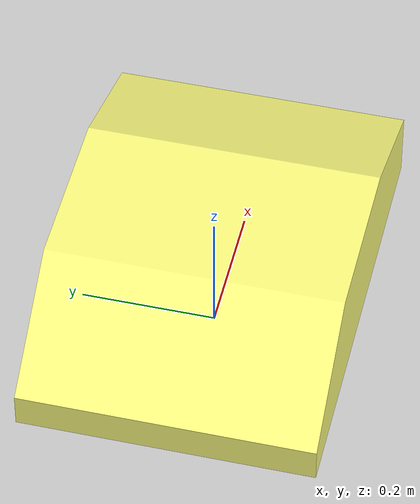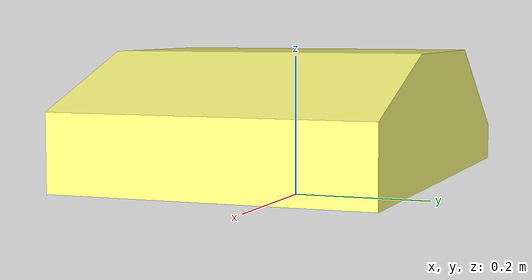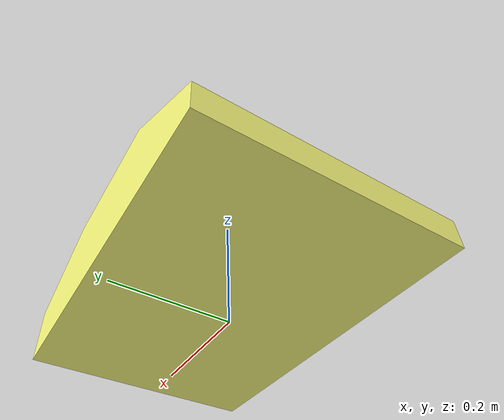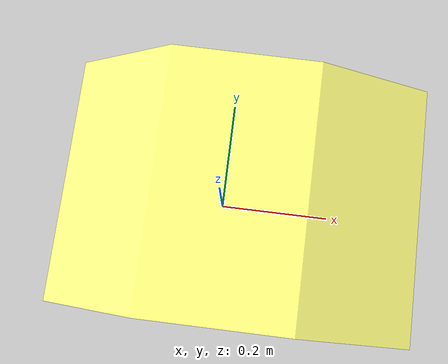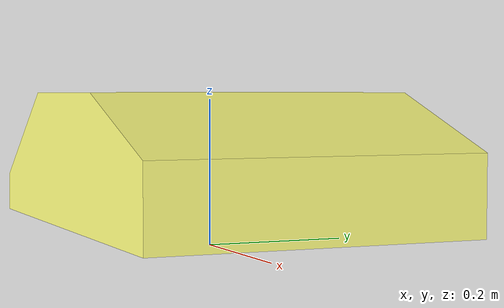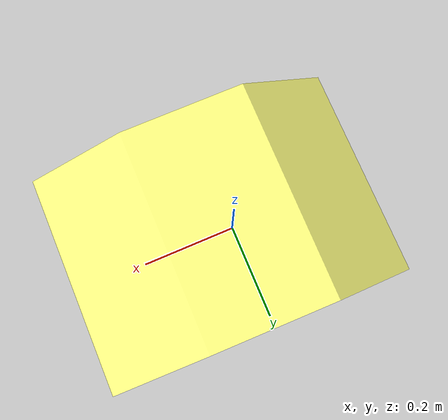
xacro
<?xml version="1.0"?>
<robot xmlns:xacro="http://www.ros.org/wiki/xacro" name="robot">

  <!-- Include other Xacro files -->
  <xacro:include filename="$(find max_light_pkg)/urdf/max_light.xacro"/>
  <xacro:include filename="$(find max_light_pkg)/urdf/front_wheel.xacro"/>
  <xacro:include filename="$(find max_light_pkg)/urdf/rear_wheel.xacro"/>

  <xacro:include filename="$(find max_light_pkg)/urdf/mid_front_wheel.xacro"/>
  <xacro:include filename="$(find max_light_pkg)/urdf/mid_rear_wheel.xacro"/>

  <!-- Define properties -->
  <xacro:property name="position_left" value="0.31141"/>
  <xacro:property name="position_right" value="-0.3"/>

  <!-- Use macros and properties -->

  <xacro:front_wheel left_right="left" radius="0.075" length="0.123" position="${position_left}"/>
  <xacro:front_wheel left_right="right" radius="0.075" length="0.123" position="${position_right}"/>
  <xacro:rear_wheel left_right="left" radius="0.09" length="0.123" position="${position_left}"/>
  <xacro:rear_wheel left_right="right" radius="0.09" length="0.123" position="${position_right}"/>

  <xacro:mid_front_wheel left_right="left" radius="0.055" length="0.123" position="${position_left}"/>
  <xacro:mid_front_wheel left_right="right" radius="0.055" length="0.123" position="${position_right}"/>
  <xacro:mid_rear_wheel left_right="left" radius="0.055" length="0.123" position="${position_left}"/>
  <xacro:mid_rear_wheel left_right="right" radius="0.055" length="0.123" position="${position_right}"/>

  <!-- Gazebo plugin -->
  <gazebo>
    <plugin name="gazebo_ros_control" filename="libgazebo_ros_control.so">
      <robotNamespace>/</robotNamespace>
    </plugin>
  </gazebo>

  <gazebo>
    <plugin name="imu_controller" filename="libhector_gazebo_ros_imu.so">
      <updateRate>50.0</updateRate>
      <bodyName>base_link</bodyName>
      <topicName>imu/data</topicName>
      <accelDrift>0.005 0.005 0.005</accelDrift>
      <accelGaussianNoise>0.005 0.005 0.005</accelGaussianNoise>
      <rateDrift>0.005 0.005 0.005 </rateDrift>
      <rateGaussianNoise>0.005 0.005 0.005 </rateGaussianNoise>
      <headingDrift>0.005</headingDrift>
      <headingGaussianNoise>0.005</headingGaussianNoise>
    </plugin>
  </gazebo>

  <gazebo>
    <plugin name="gps_controller" filename="libhector_gazebo_ros_gps.so">
      <updateRate>5</updateRate>
      <bodyName>base_link</bodyName>
      <frameId>base_link</frameId>
      <topicName>navsat/fix</topicName>
      <velocityTopicName>navsat/vel</velocityTopicName>
      <referenceLatitude>$(optenv GAZEBO_WORLD_LAT 49.9)</referenceLatitude>
      <referenceLongitude>$(optenv GAZEBO_WORLD_LON 8.9)</referenceLongitude>
      <referenceHeading>90</referenceHeading>
      <referenceAltitude>0</referenceAltitude>
      <drift>0.01 0.01 0.01</drift>
      <gaussiannoise>5.0 5.0 5.0</gaussiannoise>
      <velocitydrift>0.1 0.1 0.1</velocitydrift>
      <velocitygaussiannoise>0.1 0.1 0.1</velocitygaussiannoise>
    </plugin>
  </gazebo>

</robot>

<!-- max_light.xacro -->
<robot xmlns:xacro="http://www.ros.org/wiki/xacro" name="max_light_pkg">

  <!-- Define constants for reuse -->
  <xacro:property name="base_link_mesh" value="package://max_light_pkg/meshes/base_link.STL"/>
  <xacro:property name="collision_chassis_mesh" value="package://max_light_pkg/meshes/collision_chassis.STL"/>

  <link name="base_link">
    <inertial>
      <origin xyz="8.35425640166998E-07 3.28216849605566E-06 2.19990104377214E-06" rpy="0 0 0" />
      <mass value="14.6921624554222" />
      <inertia ixx="0.134518024186084" ixy="4.16517669374262E-07" ixz="-0.0243729105907269"
               iyy="0.367422616584132" iyz="2.64074275227996E-07" izz="0.319923962428278" />
    </inertial>
    <visual>
      <origin xyz="0 0 0" rpy="0 0 0" />
      <geometry>
        <mesh filename="${base_link_mesh}" />
      </geometry>
      <material name="">
        <color rgba="1 1 0.501960784313725 1" />
      </material>
    </visual>
    <collision>
      <origin xyz="0 0 0" rpy="0 0 0" />
      <geometry>
        <mesh filename="${collision_chassis_mesh}" />
      </geometry>
    </collision>
  </link>

</robot>

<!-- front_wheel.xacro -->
<robot xmlns:xacro="http://www.ros.org/wiki/xacro" name="front_wheel">

<xacro:include filename="$(find max_light_pkg)/urdf/cylinder_inertia.xacro"/>

<xacro:macro name="front_wheel" params="left_right radius length position">

    <xacro:property name="mass" value="4" />

    <link name="front_${left_right}_wheel">
        <collision>
            <geometry>
                <cylinder radius="${radius}" length="${length}" />
            </geometry>
        </collision>
        <xacro:cylinder_inertia mass="${mass}" radius="${radius}" length="${length}"/>
    </link>

    <joint name="front_${left_right}_wheel_joint" type="continuous">
        <origin xyz="0.19917 ${position} -0.0757" rpy=" -1.57 0 0" />
        <parent link="base_link" />
        <child link="front_${left_right}_wheel" />
        <axis  xyz="0 0 1" />
    </joint>

    <transmission name="trans_front_${left_right}_wheel">
        <type>transmission_interface/SimpleTransmission</type>
        <joint name="front_${left_right}_wheel_joint">
        <hardwareInterface>hardware_interface/VelocityJointInterface</hardwareInterface>
        </joint>
        <actuator name="motor_front_${left_right}_wheel">
        <mechanicalReduction>100</mechanicalReduction>
        </actuator>
    </transmission>

    <gazebo reference="front_${left_right}_wheel">
        <gravity>true</gravity>
        <mu1>1</mu1>
        <mu2>1</mu2>
        <kd>1</kd>
        <kp>10000000000.0</kp>
        <fdir1>0 0 1</fdir1>
        <selfCollide>false</selfCollide>
    </gazebo>

</xacro:macro>

</robot>

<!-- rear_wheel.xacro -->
<robot xmlns:xacro="http://www.ros.org/wiki/xacro" name="rear_wheel">

<xacro:include filename="$(find max_light_pkg)/urdf/cylinder_inertia.xacro"/>

<xacro:macro name="rear_wheel" params="left_right radius length position">

    <xacro:property name="mass" value="4.23900913" />

    <link name="rear_${left_right}_wheel">
        <collision>
            <geometry>
                <cylinder radius="${radius}" length="${length}" />
            </geometry>
        </collision>
        <xacro:cylinder_inertia mass="${mass}" radius="${radius}" length="${length}"/>
    </link>

    <joint name="rear_${left_right}_wheel_joint" type="continuous">
        <origin xyz="-0.25305 ${position} -0.06070" rpy=" -1.57 0 0" />
        <parent link="base_link" />
        <child link="rear_${left_right}_wheel" />
        <axis  xyz="0 0 1" />
    </joint>

    <transmission name="trans_rear_${left_right}_wheel">
        <type>transmission_interface/SimpleTransmission</type>
        <joint name="rear_${left_right}_wheel_joint">
        <hardwareInterface>hardware_interface/VelocityJointInterface</hardwareInterface>
        </joint>
        <actuator name="motor_rear_${left_right}_wheel">
        <mechanicalReduction>100</mechanicalReduction>
        </actuator>
    </transmission>

    <gazebo reference="rear_${left_right}_wheel">
        <gravity>true</gravity>
        <mu1>1</mu1>
        <mu2>1</mu2>
        <kd>1</kd>
        <kp>10000000000.0</kp>
        <fdir1>0 0 1</fdir1>
        <selfCollide>false</selfCollide>
    </gazebo>

</xacro:macro>

</robot>

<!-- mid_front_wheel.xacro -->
<robot xmlns:xacro="http://www.ros.org/wiki/xacro" name="mid_front_wheel">

<xacro:include filename="$(find max_light_pkg)/urdf/cylinder_inertia.xacro"/>

<xacro:macro name="mid_front_wheel" params="left_right radius length position">

    <xacro:property name="mass" value="2" />

    <link name="mid_front_${left_right}_wheel">
        <collision>
            <geometry>
                <cylinder radius="${radius}" length="${length}" />
            </geometry>
        </collision>
        <xacro:cylinder_inertia mass="${mass}" radius="${radius}" length="${length}"/>
    </link>

    <joint name="mid_front_${left_right}_wheel_joint" type="continuous">
        <origin xyz="0.04401 ${position} -0.09570" rpy=" -1.57 0 0" />
        <parent link="base_link" />
        <child link="mid_front_${left_right}_wheel" />
        <axis  xyz="0 0 1" />
    </joint>

    <transmission name="trans_mid_front_${left_right}_wheel">
        <type>transmission_interface/SimpleTransmission</type>
        <joint name="mid_front_${left_right}_wheel_joint">
        <hardwareInterface>hardware_interface/VelocityJointInterface</hardwareInterface>
        </joint>
        <actuator name="motor_mid_front_${left_right}_wheel">
        <mechanicalReduction>100</mechanicalReduction>
        </actuator>
    </transmission>

    <gazebo reference="mid_front_${left_right}_wheel">
        <gravity>true</gravity>
        <mu1>1</mu1>
        <mu2>1</mu2>
        <kd>1</kd>
        <kp>10000000000.0</kp>
        <fdir1>0 0 1</fdir1>
        <selfCollide>false</selfCollide>
    </gazebo>

</xacro:macro>

</robot>

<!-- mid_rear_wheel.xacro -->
<robot xmlns:xacro="http://www.ros.org/wiki/xacro" name="mid_rear_wheel">

<xacro:include filename="$(find max_light_pkg)/urdf/cylinder_inertia.xacro"/>

<xacro:macro name="mid_rear_wheel" params="left_right radius length position">

    <xacro:property name="mass" value="2" />

    <link name="mid_rear_${left_right}_wheel">
        <collision>
            <geometry>
                <cylinder radius="${radius}" length="${length}" />
            </geometry>
        </collision>
        <xacro:cylinder_inertia mass="${mass}" radius="${radius}" length="${length}"/>
    </link>

    <joint name="mid_rear_${left_right}_wheel_joint" type="continuous">
        <origin xyz="-0.09105 ${position} -0.09570" rpy=" -1.57 0 0" />
        <parent link="base_link" />
        <child link="mid_rear_${left_right}_wheel" />
        <axis  xyz="0 0 1" />
    </joint>

    <transmission name="trans_mid_rear_${left_right}_wheel">
        <type>transmission_interface/SimpleTransmission</type>
        <joint name="mid_rear_${left_right}_wheel_joint">
        <hardwareInterface>hardware_interface/VelocityJointInterface</hardwareInterface>
        </joint>
        <actuator name="motor_mid_rear_${left_right}_wheel">
        <mechanicalReduction>100</mechanicalReduction>
        </actuator>
    </transmission>

    <gazebo reference="mid_rear_${left_right}_wheel">
        <gravity>true</gravity>
        <mu1>1</mu1>
        <mu2>1</mu2>
        <kd>1</kd>
        <kp>10000000000.0</kp>
        <fdir1>0 0 1</fdir1>
        <selfCollide>false</selfCollide>
    </gazebo>

</xacro:macro>

</robot>
